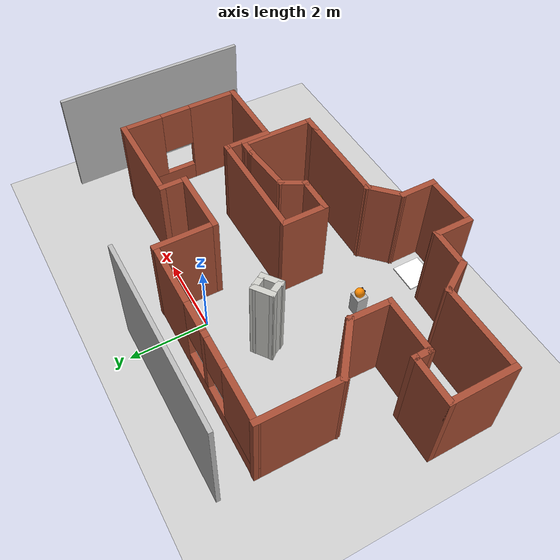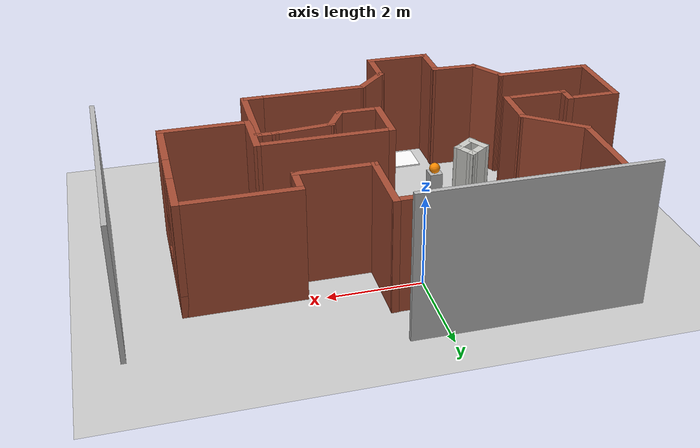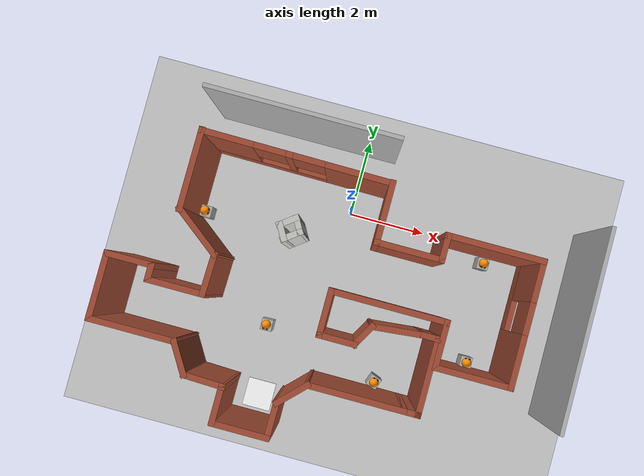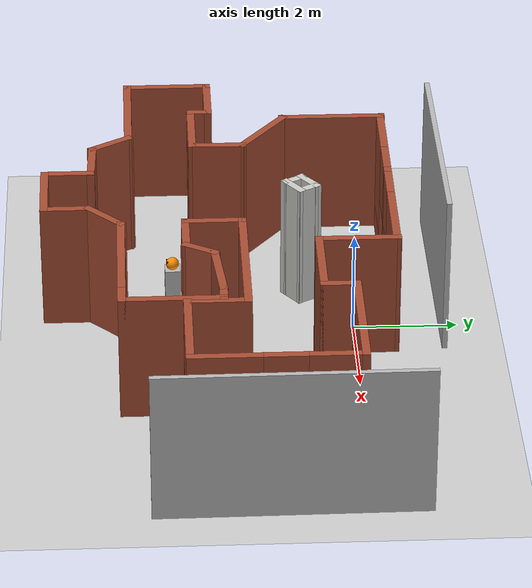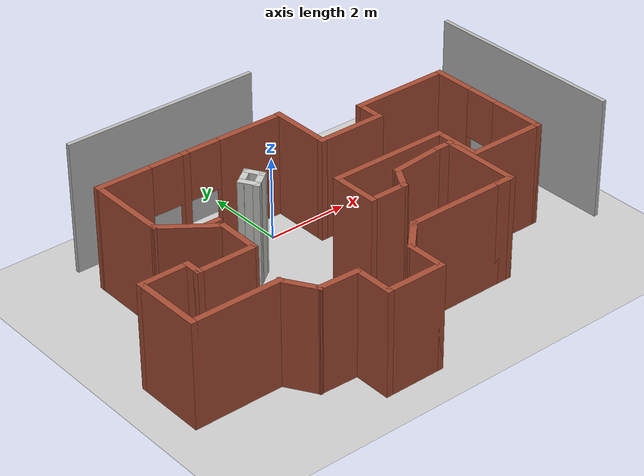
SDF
<sdf version="1.6">
 <world name="default">
  <model name="ground_plane">
   <static>1</static>
   <link name="link">
    <collision name="collision">
     <geometry><plane><normal>0 0 1</normal><size>100 100</size></plane></geometry>
     <surface><friction><ode><mu>100</mu><mu2>50</mu2></ode></friction></surface>
    </collision>
    <visual name="visual">
     <cast_shadows>0</cast_shadows>
     <geometry><plane><normal>0 0 1</normal><size>100 100</size></plane></geometry>
     <material>
      <script><uri>file://media/materials/scripts/gazebo.material</uri><name>Gazebo/Grey</name></script>
     </material>
    </visual>
   </link>
  </model>
  <gravity>0 0 -9.8</gravity>
  <magnetic_field>6e-06 2.3e-05 -4.2e-05</magnetic_field>
  <atmosphere type="adiabatic"/>
  <physics name="default_physics" default="0" type="ode">
   <max_step_size>0.001</max_step_size>
   <real_time_factor>1</real_time_factor>
   <real_time_update_rate>1000</real_time_update_rate>
  </physics>
  <scene><ambient>0.4 0.4 0.4 1</ambient><background>0.7 0.7 0.7 1</background><shadows>1</shadows></scene>
  <audio><device>default</device></audio>
  <spherical_coordinates>
   <surface_model>EARTH_WGS84</surface_model>
   <latitude_deg>0</latitude_deg>
   <longitude_deg>0</longitude_deg>
   <elevation>0</elevation>
   <heading_deg>0</heading_deg>
  </spherical_coordinates>
  <model name="Untitled">
   <pose>-0.264329 -2.5403 0 0 -0 0</pose>
   <link name="Wall_0">
    <collision name="Wall_0_Collision">
     <geometry><box><size>1.03977 0.15 2.5</size></box></geometry>
     <pose>0 0 1.25 0 -0 0</pose>
    </collision>
    <visual name="Wall_0_Visual">
     <pose>0 0 1.25 0 -0 0</pose>
     <geometry><box><size>1.03977 0.15 2.5</size></box></geometry>
     <material>
      <script><uri>file://media/materials/scripts/gazebo.material</uri><name>Gazebo/Bricks</name></script>
      <ambient>1 1 1 1</ambient>
     </material>
     <meta><layer>0</layer></meta>
    </visual>
    <pose>-1.56806 -2.87812 0 0 -0 -1.5708</pose>
   </link>
   <link name="Wall_1">
    <collision name="Wall_1_Collision">
     <geometry><box><size>1.5 0.15 2.5</size></box></geometry>
     <pose>0 0 1.25 0 -0 0</pose>
    </collision>
    <visual name="Wall_1_Visual">
     <pose>0 0 1.25 0 -0 0</pose>
     <geometry><box><size>1.5 0.15 2.5</size></box></geometry>
     <material>
      <script><uri>file://media/materials/scripts/gazebo.material</uri><name>Gazebo/Bricks</name></script>
      <ambient>1 1 1 1</ambient>
     </material>
     <meta><layer>0</layer></meta>
    </visual>
    <pose>-0.893059 -3.32295 0 0 -0 0</pose>
   </link>
   <link name="Wall_10">
    <collision name="Wall_10_Collision">
     <geometry><box><size>1.25 0.15 2.5</size></box></geometry>
     <pose>0 0 1.25 0 -0 0</pose>
    </collision>
    <visual name="Wall_10_Visual">
     <pose>0 0 1.25 0 -0 0</pose>
     <geometry><box><size>1.25 0.15 2.5</size></box></geometry>
     <material>
      <script><uri>file://media/materials/scripts/gazebo.material</uri><name>Gazebo/Bricks</name></script>
      <ambient>1 1 1 1</ambient>
     </material>
     <meta><layer>0</layer></meta>
    </visual>
    <pose>3.1875 -0.136022 0 0 -0 -1.5708</pose>
   </link>
   <link name="Wall_11">
    <collision name="Wall_11_Collision">
     <geometry><box><size>2 0.15 2.5</size></box></geometry>
     <pose>0 0 1.25 0 -0 0</pose>
    </collision>
    <visual name="Wall_11_Visual">
     <pose>0 0 1.25 0 -0 0</pose>
     <geometry><box><size>2 0.15 2.5</size></box></geometry>
     <material>
      <script><uri>file://media/materials/scripts/gazebo.material</uri><name>Gazebo/Bricks</name></script>
      <ambient>1 1 1 1</ambient>
     </material>
     <meta><layer>0</layer></meta>
    </visual>
    <pose>4.1125 -0.686022 0 0 -0 0</pose>
   </link>
   <link name="Wall_12">
    <pose>5.0375 0.863978 0 0 -0 1.5708</pose>
    <visual name="Wall_12_Visual_0">
     <pose>-0.94302 0 1.25 0 -0 0</pose>
     <geometry><box><size>1.36396 0.15 2.5</size></box></geometry>
     <material>
      <script><uri>file://media/materials/scripts/gazebo.material</uri><name>Gazebo/Bricks</name></script>
      <ambient>1 1 1 1</ambient>
     </material>
     <meta><layer>0</layer></meta>
    </visual>
    <collision name="Wall_12_Collision_0">
     <geometry><box><size>1.36396 0.15 2.5</size></box></geometry>
     <pose>-0.94302 0 1.25 0 -0 0</pose>
    </collision>
    <visual name="Wall_12_Visual_1">
     <pose>0.68198 0 0.25 0 -0 0</pose>
     <geometry><box><size>1.88604 0.15 0.5</size></box></geometry>
     <material>
      <script><uri>file://media/materials/scripts/gazebo.material</uri><name>Gazebo/Bricks</name></script>
      <ambient>1 1 1 1</ambient>
     </material>
     <meta><layer>0</layer></meta>
    </visual>
    <collision name="Wall_12_Collision_1">
     <geometry><box><size>1.88604 0.15 0.5</size></box></geometry>
     <pose>0.68198 0 0.25 0 -0 0</pose>
    </collision>
    <visual name="Wall_12_Visual_2">
     <pose>1.08198 0 1.5 0 -0 0</pose>
     <geometry><box><size>1.08604 0.15 2</size></box></geometry>
     <material>
      <script><uri>file://media/materials/scripts/gazebo.material</uri><name>Gazebo/Bricks</name></script>
      <ambient>1 1 1 1</ambient>
     </material>
     <meta><layer>0</layer></meta>
    </visual>
    <collision name="Wall_12_Collision_2">
     <geometry><box><size>1.08604 0.15 2</size></box></geometry>
     <pose>1.08198 0 1.5 0 -0 0</pose>
    </collision>
    <visual name="Wall_12_Visual_3">
     <pose>0.13896 0 1.9 0 -0 0</pose>
     <geometry><box><size>0.8 0.15 1.2</size></box></geometry>
     <material>
      <script><uri>file://media/materials/scripts/gazebo.material</uri><name>Gazebo/Bricks</name></script>
      <ambient>1 1 1 1</ambient>
     </material>
     <meta><layer>0</layer></meta>
    </visual>
    <collision name="Wall_12_Collision_3">
     <geometry><box><size>0.8 0.15 1.2</size></box></geometry>
     <pose>0.13896 0 1.9 0 -0 0</pose>
    </collision>
   </link>
   <link name="Wall_13">
    <collision name="Wall_13_Collision">
     <geometry><box><size>2.5 0.15 2.5</size></box></geometry>
     <pose>0 0 1.25 0 -0 0</pose>
    </collision>
    <visual name="Wall_13_Visual">
     <pose>0 0 1.25 0 -0 0</pose>
     <geometry><box><size>2.5 0.15 2.5</size></box></geometry>
     <material>
      <script><uri>file://media/materials/scripts/gazebo.material</uri><name>Gazebo/Bricks</name></script>
      <ambient>1 1 1 1</ambient>
     </material>
     <meta><layer>0</layer></meta>
    </visual>
    <pose>3.8625 2.41398 0 0 -0 3.14159</pose>
   </link>
   <link name="Wall_14">
    <collision name="Wall_14_Collision">
     <geometry><box><size>0.75 0.15 2.5</size></box></geometry>
     <pose>0 0 1.25 0 -0 0</pose>
    </collision>
    <visual name="Wall_14_Visual">
     <pose>0 0 1.25 0 -0 0</pose>
     <geometry><box><size>0.75 0.15 2.5</size></box></geometry>
     <material>
      <script><uri>file://media/materials/scripts/gazebo.material</uri><name>Gazebo/Bricks</name></script>
      <ambient>1 1 1 1</ambient>
     </material>
     <meta><layer>0</layer></meta>
    </visual>
    <pose>2.6875 2.11398 0 0 -0 -1.5708</pose>
   </link>
   <link name="Wall_16">
    <collision name="Wall_16_Collision">
     <geometry><box><size>1.75 0.15 2.5</size></box></geometry>
     <pose>0 0 1.25 0 -0 0</pose>
    </collision>
    <visual name="Wall_16_Visual">
     <pose>0 0 1.25 0 -0 0</pose>
     <geometry><box><size>1.75 0.15 2.5</size></box></geometry>
     <material>
      <script><uri>file://media/materials/scripts/gazebo.material</uri><name>Gazebo/Bricks</name></script>
      <ambient>1 1 1 1</ambient>
     </material>
     <meta><layer>0</layer></meta>
    </visual>
    <pose>1.8875 1.81398 0 0 -0 3.14159</pose>
   </link>
   <link name="Wall_17">
    <collision name="Wall_17_Collision">
     <geometry><box><size>1.61902 0.15 2.5</size></box></geometry>
     <pose>0 0 1.25 0 -0 0</pose>
    </collision>
    <visual name="Wall_17_Visual">
     <pose>0 0 1.25 0 -0 0</pose>
     <geometry><box><size>1.61902 0.15 2.5</size></box></geometry>
     <material>
      <script><uri>file://media/materials/scripts/gazebo.material</uri><name>Gazebo/Bricks</name></script>
      <ambient>1 1 1 1</ambient>
     </material>
     <meta><layer>0</layer></meta>
    </visual>
    <pose>1.0875 2.54849 0 0 -0 1.5708</pose>
   </link>
   <link name="Wall_18">
    <pose>-1.27926 3.28961 0 0 -0 3.13321</pose>
    <visual name="Wall_18_Visual_0">
     <pose>-1.56904 0 1.25 0 -0 0</pose>
     <geometry><box><size>1.74553 0.15 2.5</size></box></geometry>
     <material>
      <script><uri>file://media/materials/scripts/gazebo.material</uri><name>Gazebo/Bricks</name></script>
      <ambient>1 1 1 1</ambient>
     </material>
     <meta><layer>0</layer></meta>
    </visual>
    <collision name="Wall_18_Collision_0">
     <geometry><box><size>1.74553 0.15 2.5</size></box></geometry>
     <pose>-1.56904 0 1.25 0 -0 0</pose>
    </collision>
    <visual name="Wall_18_Visual_1">
     <pose>0.872763 0 0.25 0 -0 0</pose>
     <geometry><box><size>3.13807 0.15 0.5</size></box></geometry>
     <material>
      <script><uri>file://media/materials/scripts/gazebo.material</uri><name>Gazebo/Bricks</name></script>
      <ambient>1 1 1 1</ambient>
     </material>
     <meta><layer>0</layer></meta>
    </visual>
    <collision name="Wall_18_Collision_1">
     <geometry><box><size>3.13807 0.15 0.5</size></box></geometry>
     <pose>0.872763 0 0.25 0 -0 0</pose>
    </collision>
    <visual name="Wall_18_Visual_2">
     <pose>0.192591 0 1.5 0 -0 0</pose>
     <geometry><box><size>0.177729 0.15 2</size></box></geometry>
     <material>
      <script><uri>file://media/materials/scripts/gazebo.material</uri><name>Gazebo/Bricks</name></script>
      <ambient>1 1 1 1</ambient>
     </material>
     <meta><layer>0</layer></meta>
    </visual>
    <collision name="Wall_18_Collision_2">
     <geometry><box><size>0.177729 0.15 2</size></box></geometry>
     <pose>0.192591 0 1.5 0 -0 0</pose>
    </collision>
    <visual name="Wall_18_Visual_3">
     <pose>1.76163 0 1.5 0 -0 0</pose>
     <geometry><box><size>1.36034 0.15 2</size></box></geometry>
     <material>
      <script><uri>file://media/materials/scripts/gazebo.material</uri><name>Gazebo/Bricks</name></script>
      <ambient>1 1 1 1</ambient>
     </material>
     <meta><layer>0</layer></meta>
    </visual>
    <collision name="Wall_18_Collision_3">
     <geometry><box><size>1.36034 0.15 2</size></box></geometry>
     <pose>1.76163 0 1.5 0 -0 0</pose>
    </collision>
    <visual name="Wall_18_Visual_4">
     <pose>-0.296273 0 1.9 0 -0 0</pose>
     <geometry><box><size>0.8 0.15 1.2</size></box></geometry>
     <material>
      <script><uri>file://media/materials/scripts/gazebo.material</uri><name>Gazebo/Bricks</name></script>
      <ambient>1 1 1 1</ambient>
     </material>
     <meta><layer>0</layer></meta>
    </visual>
    <collision name="Wall_18_Collision_4">
     <geometry><box><size>0.8 0.15 1.2</size></box></geometry>
     <pose>-0.296273 0 1.9 0 -0 0</pose>
    </collision>
    <visual name="Wall_18_Visual_5">
     <pose>0.681456 0 1.9 0 -0 0</pose>
     <geometry><box><size>0.8 0.15 1.2</size></box></geometry>
     <material>
      <script><uri>file://media/materials/scripts/gazebo.material</uri><name>Gazebo/Bricks</name></script>
      <ambient>1 1 1 1</ambient>
     </material>
     <meta><layer>0</layer></meta>
    </visual>
    <collision name="Wall_18_Collision_5">
     <geometry><box><size>0.8 0.15 1.2</size></box></geometry>
     <pose>0.681456 0 1.9 0 -0 0</pose>
    </collision>
   </link>
   <link name="Wall_19">
    <collision name="Wall_19_Collision">
     <geometry><box><size>2.11268 0.15 2.5</size></box></geometry>
     <pose>0 0 1.25 0 -0 0</pose>
    </collision>
    <visual name="Wall_19_Visual">
     <pose>0 0 1.25 0 -0 0</pose>
     <geometry><box><size>2.11268 0.15 2.5</size></box></geometry>
     <material>
      <script><uri>file://media/materials/scripts/gazebo.material</uri><name>Gazebo/Bricks</name></script>
      <ambient>1 1 1 1</ambient>
     </material>
     <meta><layer>0</layer></meta>
    </visual>
    <pose>-3.65028 2.34135 0 0 -0 -1.57513</pose>
   </link>
   <link name="Wall_2">
    <collision name="Wall_2_Collision">
     <geometry><box><size>1 0.15 2.5</size></box></geometry>
     <pose>0 0 1.25 0 -0 0</pose>
    </collision>
    <visual name="Wall_2_Visual">
     <pose>0 0 1.25 0 -0 0</pose>
     <geometry><box><size>1 0.15 2.5</size></box></geometry>
     <material>
      <script><uri>file://media/materials/scripts/gazebo.material</uri><name>Gazebo/Bricks</name></script>
      <ambient>1 1 1 1</ambient>
     </material>
     <meta><layer>0</layer></meta>
    </visual>
    <pose>-0.218059 -2.89795 0 0 -0 1.5708</pose>
   </link>
   <link name="Wall_20">
    <collision name="Wall_20_Collision">
     <geometry><box><size>1.53341 0.15 2.5</size></box></geometry>
     <pose>0 0 1.25 0 -0 0</pose>
    </collision>
    <visual name="Wall_20_Visual">
     <pose>0 0 1.25 0 -0 0</pose>
     <geometry><box><size>1.53341 0.15 2.5</size></box></geometry>
     <material>
      <script><uri>file://media/materials/scripts/gazebo.material</uri><name>Gazebo/Bricks</name></script>
      <ambient>1 1 1 1</ambient>
     </material>
     <meta><layer>0</layer></meta>
    </visual>
    <pose>-3.10779 0.949528 0 0 -0 -0.659294</pose>
   </link>
   <link name="Wall_22">
    <collision name="Wall_22_Collision">
     <geometry><box><size>1.5 0.15 2.5</size></box></geometry>
     <pose>0 0 1.25 0 -0 0</pose>
    </collision>
    <visual name="Wall_22_Visual">
     <pose>0 0 1.25 0 -0 0</pose>
     <geometry><box><size>1.5 0.15 2.5</size></box></geometry>
     <material>
      <script><uri>file://media/materials/scripts/gazebo.material</uri><name>Gazebo/Bricks</name></script>
      <ambient>1 1 1 1</ambient>
     </material>
     <meta><layer>0</layer></meta>
    </visual>
    <pose>-3.2625 -0.455156 0 0 -0 3.14159</pose>
   </link>
   <link name="Wall_23">
    <collision name="Wall_23_Collision">
     <geometry><box><size>0.5 0.15 2.5</size></box></geometry>
     <pose>0 0 1.25 0 -0 0</pose>
    </collision>
    <visual name="Wall_23_Visual">
     <pose>0 0 1.25 0 -0 0</pose>
     <geometry><box><size>0.5 0.15 2.5</size></box></geometry>
     <material>
      <script><uri>file://media/materials/scripts/gazebo.material</uri><name>Gazebo/Bricks</name></script>
      <ambient>1 1 1 1</ambient>
     </material>
     <meta><layer>0</layer></meta>
    </visual>
    <pose>-3.9375 -0.280156 0 0 -0 1.5708</pose>
   </link>
   <link name="Wall_24">
    <collision name="Wall_24_Collision">
     <geometry><box><size>1.25 0.15 2.5</size></box></geometry>
     <pose>0 0 1.25 0 -0 0</pose>
    </collision>
    <visual name="Wall_24_Visual">
     <pose>0 0 1.25 0 -0 0</pose>
     <geometry><box><size>1.25 0.15 2.5</size></box></geometry>
     <material>
      <script><uri>file://media/materials/scripts/gazebo.material</uri><name>Gazebo/Bricks</name></script>
      <ambient>1 1 1 1</ambient>
     </material>
     <meta><layer>0</layer></meta>
    </visual>
    <pose>-4.4875 -0.105157 0 0 -0 3.14159</pose>
   </link>
   <link name="Wall_25">
    <collision name="Wall_25_Collision">
     <geometry><box><size>1.75 0.15 2.5</size></box></geometry>
     <pose>0 0 1.25 0 -0 0</pose>
    </collision>
    <visual name="Wall_25_Visual">
     <pose>0 0 1.25 0 -0 0</pose>
     <geometry><box><size>1.75 0.15 2.5</size></box></geometry>
     <material>
      <script><uri>file://media/materials/scripts/gazebo.material</uri><name>Gazebo/Bricks</name></script>
      <ambient>1 1 1 1</ambient>
     </material>
     <meta><layer>0</layer></meta>
    </visual>
    <pose>-5.0375 -0.905156 0 0 -0 -1.5708</pose>
   </link>
   <link name="Wall_26">
    <collision name="Wall_26_Collision">
     <geometry><box><size>2.25 0.15 2.5</size></box></geometry>
     <pose>0 0 1.25 0 -0 0</pose>
    </collision>
    <visual name="Wall_26_Visual">
     <pose>0 0 1.25 0 -0 0</pose>
     <geometry><box><size>2.25 0.15 2.5</size></box></geometry>
     <material>
      <script><uri>file://media/materials/scripts/gazebo.material</uri><name>Gazebo/Bricks</name></script>
      <ambient>1 1 1 1</ambient>
     </material>
     <meta><layer>0</layer></meta>
    </visual>
    <pose>-3.9875 -1.70516 0 0 -0 0</pose>
   </link>
   <link name="Wall_27">
    <collision name="Wall_27_Collision">
     <geometry><box><size>0.965882 0.15 2.5</size></box></geometry>
     <pose>0 0 1.25 0 -0 0</pose>
    </collision>
    <visual name="Wall_27_Visual">
     <pose>0 0 1.25 0 -0 0</pose>
     <geometry><box><size>0.965882 0.15 2.5</size></box></geometry>
     <material>
      <script><uri>file://media/materials/scripts/gazebo.material</uri><name>Gazebo/Bricks</name></script>
      <ambient>1 1 1 1</ambient>
     </material>
     <meta><layer>0</layer></meta>
    </visual>
    <pose>-2.725 -2.05338 0 0 -0 -1.02288</pose>
   </link>
   <link name="Wall_28">
    <collision name="Wall_28_Collision">
     <geometry><box><size>1.09497 0.15 2.5</size></box></geometry>
     <pose>0 0 1.25 0 -0 0</pose>
    </collision>
    <visual name="Wall_28_Visual">
     <pose>0 0 1.25 0 -0 0</pose>
     <geometry><box><size>1.09497 0.15 2.5</size></box></geometry>
     <material>
      <script><uri>file://media/materials/scripts/gazebo.material</uri><name>Gazebo/Bricks</name></script>
      <ambient>1 1 1 1</ambient>
     </material>
     <meta><layer>0</layer></meta>
    </visual>
    <pose>-2.02705 -2.41744 0 0 -0 -0.033525</pose>
   </link>
   <link name="Wall_3">
    <collision name="Wall_3_Collision">
     <geometry><box><size>1 0.15 2.5</size></box></geometry>
     <pose>0 0 1.25 0 -0 0</pose>
    </collision>
    <visual name="Wall_3_Visual">
     <pose>0 0 1.25 0 -0 0</pose>
     <geometry><box><size>1 0.15 2.5</size></box></geometry>
     <material>
      <script><uri>file://media/materials/scripts/gazebo.material</uri><name>Gazebo/Bricks</name></script>
      <ambient>1 1 1 1</ambient>
     </material>
     <meta><layer>0</layer></meta>
    </visual>
    <pose>0.082461 -2.17243 0 0 -0 0.785398</pose>
   </link>
   <link name="Wall_30">
    <collision name="Wall_30_Collision">
     <geometry><box><size>1.13133 0.15 2.5</size></box></geometry>
     <pose>0 0 1.25 0 -0 0</pose>
    </collision>
    <visual name="Wall_30_Visual">
     <pose>0 0 1.25 0 -0 0</pose>
     <geometry><box><size>1.13133 0.15 2.5</size></box></geometry>
     <material>
      <script><uri>file://media/materials/scripts/gazebo.material</uri><name>Gazebo/Bricks</name></script>
      <ambient>1 1 1 1</ambient>
     </material>
     <meta><layer>0</layer></meta>
    </visual>
    <pose>-2.57428 0.035331 0 0 -0 -1.59775</pose>
   </link>
   <link name="Wall_32">
    <collision name="Wall_32_Collision">
     <geometry><box><size>0.75 0.15 2.5</size></box></geometry>
     <pose>0 0 1.25 0 -0 0</pose>
    </collision>
    <visual name="Wall_32_Visual">
     <pose>0 0 1.25 0 -0 0</pose>
     <geometry><box><size>0.75 0.15 2.5</size></box></geometry>
     <material>
      <script><uri>file://media/materials/scripts/gazebo.material</uri><name>Gazebo/Bricks</name></script>
      <ambient>1 1 1 1</ambient>
     </material>
     <meta><layer>0</layer></meta>
    </visual>
    <pose>1.35072 -0.40104 0 0 -0 1.0472</pose>
   </link>
   <link name="Wall_33">
    <collision name="Wall_33_Collision">
     <geometry><box><size>1.38802 0.15 2.5</size></box></geometry>
     <pose>0 0 1.25 0 -0 0</pose>
    </collision>
    <visual name="Wall_33_Visual">
     <pose>0 0 1.25 0 -0 0</pose>
     <geometry><box><size>1.38802 0.15 2.5</size></box></geometry>
     <material>
      <script><uri>file://media/materials/scripts/gazebo.material</uri><name>Gazebo/Bricks</name></script>
      <ambient>1 1 1 1</ambient>
     </material>
     <meta><layer>0</layer></meta>
    </visual>
    <pose>2.11685 -0.081572 0 0 -0 0.09653</pose>
   </link>
   <link name="Wall_35">
    <collision name="Wall_35_Collision">
     <geometry><box><size>0.5 0.15 2.5</size></box></geometry>
     <pose>0 0 1.25 0 -0 0</pose>
    </collision>
    <visual name="Wall_35_Visual">
     <pose>0 0 1.25 0 -0 0</pose>
     <geometry><box><size>0.5 0.15 2.5</size></box></geometry>
     <material>
      <script><uri>file://media/materials/scripts/gazebo.material</uri><name>Gazebo/Bricks</name></script>
      <ambient>1 1 1 1</ambient>
     </material>
     <meta><layer>0</layer></meta>
    </visual>
    <pose>2.90798 -1.87191 0 0 -0 0</pose>
   </link>
   <link name="Wall_36">
    <collision name="Wall_36_Collision">
     <geometry><box><size>2 0.15 2.5</size></box></geometry>
     <pose>0 0 1.25 0 -0 0</pose>
    </collision>
    <visual name="Wall_36_Visual">
     <pose>0 0 1.25 0 -0 0</pose>
     <geometry><box><size>2 0.15 2.5</size></box></geometry>
     <material>
      <script><uri>file://media/materials/scripts/gazebo.material</uri><name>Gazebo/Bricks</name></script>
      <ambient>1 1 1 1</ambient>
     </material>
     <meta><layer>0</layer></meta>
    </visual>
    <pose>3.08298 -0.946912 0 0 -0 1.5708</pose>
   </link>
   <link name="Wall_37">
    <collision name="Wall_37_Collision">
     <geometry><box><size>0.5 0.15 2.5</size></box></geometry>
     <pose>0 0 1.25 0 -0 0</pose>
    </collision>
    <visual name="Wall_37_Visual">
     <pose>0 0 1.25 0 -0 0</pose>
     <geometry><box><size>0.5 0.15 2.5</size></box></geometry>
     <material>
      <script><uri>file://media/materials/scripts/gazebo.material</uri><name>Gazebo/Bricks</name></script>
      <ambient>1 1 1 1</ambient>
     </material>
     <meta><layer>0</layer></meta>
    </visual>
    <pose>2.90798 -0.021912 0 0 -0 3.14159</pose>
   </link>
   <link name="Wall_39">
    <collision name="Wall_39_Collision">
     <geometry><box><size>0.584347 0.15 2.5</size></box></geometry>
     <pose>0 0 1.25 0 -0 0</pose>
    </collision>
    <visual name="Wall_39_Visual">
     <pose>0 0 1.25 0 -0 0</pose>
     <geometry><box><size>0.584347 0.15 2.5</size></box></geometry>
     <material>
      <script><uri>file://media/materials/scripts/gazebo.material</uri><name>Gazebo/CeilingTiled</name></script>
      <ambient>1 1 1 1</ambient>
     </material>
     <meta><layer>0</layer></meta>
    </visual>
    <pose>-1.0908 1.74562 0 0 -0 -2.49891</pose>
   </link>
   <link name="Wall_4">
    <collision name="Wall_4_Collision">
     <geometry><box><size>2.5 0.15 2.5</size></box></geometry>
     <pose>0 0 1.25 0 -0 0</pose>
    </collision>
    <visual name="Wall_4_Visual">
     <pose>0 0 1.25 0 -0 0</pose>
     <geometry><box><size>2.5 0.15 2.5</size></box></geometry>
     <material>
      <script><uri>file://media/materials/scripts/gazebo.material</uri><name>Gazebo/Bricks</name></script>
      <ambient>1 1 1 1</ambient>
     </material>
     <meta><layer>0</layer></meta>
    </visual>
    <pose>1.55798 -1.87191 0 0 -0 0</pose>
   </link>
   <link name="Wall_40">
    <collision name="Wall_40_Collision">
     <geometry><box><size>0.5 0.15 2.5</size></box></geometry>
     <pose>0 0 1.25 0 -0 0</pose>
    </collision>
    <visual name="Wall_40_Visual">
     <pose>0 0 1.25 0 -0 0</pose>
     <geometry><box><size>0.5 0.15 2.5</size></box></geometry>
     <material>
      <script><uri>file://media/materials/scripts/gazebo.material</uri><name>Gazebo/CeilingTiled</name></script>
      <ambient>1 1 1 1</ambient>
     </material>
     <meta><layer>0</layer></meta>
    </visual>
    <pose>-1.16392 1.47713 0 0 -0 -1.0472</pose>
   </link>
   <link name="Wall_41">
    <collision name="Wall_41_Collision">
     <geometry><box><size>0.584347 0.15 2.5</size></box></geometry>
     <pose>0 0 1.25 0 -0 0</pose>
    </collision>
    <visual name="Wall_41_Visual">
     <pose>0 0 1.25 0 -0 0</pose>
     <geometry><box><size>0.584347 0.15 2.5</size></box></geometry>
     <material>
      <script><uri>file://media/materials/scripts/gazebo.material</uri><name>Gazebo/CeilingTiled</name></script>
      <ambient>1 1 1 1</ambient>
     </material>
     <meta><layer>0</layer></meta>
    </visual>
    <pose>-0.915799 1.44252 0 0 -0 0.642686</pose>
   </link>
   <link name="Wall_42">
    <collision name="Wall_42_Collision">
     <geometry><box><size>0.5 0.15 2.5</size></box></geometry>
     <pose>0 0 1.25 0 -0 0</pose>
    </collision>
    <visual name="Wall_42_Visual">
     <pose>0 0 1.25 0 -0 0</pose>
     <geometry><box><size>0.5 0.15 2.5</size></box></geometry>
     <material>
      <script><uri>file://media/materials/scripts/gazebo.material</uri><name>Gazebo/CeilingTiled</name></script>
      <ambient>1 1 1 1</ambient>
     </material>
     <meta><layer>0</layer></meta>
    </visual>
    <pose>-0.829454 1.72423 0 0 -0 2.0944</pose>
   </link>
   <link name="Wall_7">
    <collision name="Wall_7_Collision">
     <geometry><box><size>1 0.15 2.5</size></box></geometry>
     <pose>0 0 1.25 0 -0 0</pose>
    </collision>
    <visual name="Wall_7_Visual">
     <pose>0 0 1.25 0 -0 0</pose>
     <geometry><box><size>1 0.15 2.5</size></box></geometry>
     <material>
      <script><uri>file://media/materials/scripts/gazebo.material</uri><name>Gazebo/Bricks</name></script>
      <ambient>1 1 1 1</ambient>
     </material>
     <meta><layer>0</layer></meta>
    </visual>
    <pose>0.775725 -0.660847 0 0 -0 3.14159</pose>
   </link>
   <link name="Wall_8">
    <collision name="Wall_8_Collision">
     <geometry><box><size>1.22483 0.15 2.5</size></box></geometry>
     <pose>0 0 1.25 0 -0 0</pose>
    </collision>
    <visual name="Wall_8_Visual">
     <pose>0 0 1.25 0 -0 0</pose>
     <geometry><box><size>1.22483 0.15 2.5</size></box></geometry>
     <material>
      <script><uri>file://media/materials/scripts/gazebo.material</uri><name>Gazebo/Bricks</name></script>
      <ambient>1 1 1 1</ambient>
     </material>
     <meta><layer>0</layer></meta>
    </visual>
    <pose>0.3375 -0.123435 0 0 -0 1.5708</pose>
   </link>
   <link name="Wall_9">
    <collision name="Wall_9_Collision">
     <geometry><box><size>3 0.15 2.5</size></box></geometry>
     <pose>0 0 1.25 0 -0 0</pose>
    </collision>
    <visual name="Wall_9_Visual">
     <pose>0 0 1.25 0 -0 0</pose>
     <geometry><box><size>3 0.15 2.5</size></box></geometry>
     <material>
      <script><uri>file://media/materials/scripts/gazebo.material</uri><name>Gazebo/Bricks</name></script>
      <ambient>1 1 1 1</ambient>
     </material>
     <meta><layer>0</layer></meta>
    </visual>
    <pose>1.7625 0.413978 0 0 -0 0</pose>
   </link>
   <static>1</static>
  </model>
  <model name="Victim 1">
   <static>1</static>
   <link name="robot_link">
    <pose>0 0 0.3 0 -0 0</pose>
    <collision name="body_collision"><geometry><box><size>0.3 0.3 0.6</size></box></geometry></collision>
    <visual name="wheel1_visual">
     <pose>0.1 -0.05 0.45 0 1.57079 0</pose>
     <geometry><sphere><radius>0.025</radius></sphere></geometry>
     <material>
      <ambient>0.1 0.1 0.1 1</ambient>
      <diffuse>0.1 0.1 0.2 1</diffuse>
      <specular>0 0 0 0</specular>
      <emissive>0 0 0 1</emissive>
     </material>
    </visual>
    <visual name="wheel2_visual">
     <pose>0.1 0.05 0.45 0 1.57079 0</pose>
     <geometry><sphere><radius>0.025</radius></sphere></geometry>
     <material>
      <ambient>0.1 0.1 0.1 1</ambient>
      <diffuse>0.1 0.1 0.2 1</diffuse>
      <specular>0 0 0 0</specular>
      <emissive>0 0 0 1</emissive>
     </material>
    </visual>
    <visual name="body_visual_out"><geometry><box><size>0.3 0.3 0.6</size></box></geometry></visual>
    <visual name="body_visual1">
     <pose>0.03 0 0 0 -0 0</pose>
     <geometry><box><size>0.25 0.25 0.25</size></box></geometry>
     <material>
      <script>
       <uri>file://victim1/materials/scripts/</uri>
       <uri>file://victim1/materials/textures/</uri>
       <name>RepeatedTextureVic1</name>
      </script>
     </material>
    </visual>
    <visual name="head_visual">
     <pose>0 0 0.4 0 0 -2.5</pose>
     <geometry><sphere><radius>0.125</radius></sphere></geometry>
     <material>
      <ambient>1 0.55 0 1</ambient>
      <diffuse>1 0.55 0 1</diffuse>
      <specular>0 0 0 0</specular>
      <emissive>0 0 0 1</emissive>
     </material>
    </visual>
   </link>
   <pose>-1.36804 -3.43332 0 0 0 -1.55984</pose>
  </model>
  <model name="Victim 2">
   <static>1</static>
   <link name="robot_link">
    <pose>0 0 0.3 0 -0 0</pose>
    <collision name="body_collision"><geometry><box><size>0.3 0.3 0.6</size></box></geometry></collision>
    <visual name="wheel1_visual">
     <pose>0.1 -0.05 0.45 0 1.57079 0</pose>
     <geometry><sphere><radius>0.025</radius></sphere></geometry>
     <material>
      <ambient>0.1 0.1 0.1 1</ambient>
      <diffuse>0.1 0.1 0.2 1</diffuse>
      <specular>0 0 0 0</specular>
      <emissive>0 0 0 1</emissive>
     </material>
    </visual>
    <visual name="wheel2_visual">
     <pose>0.1 0.05 0.45 0 1.57079 0</pose>
     <geometry><sphere><radius>0.025</radius></sphere></geometry>
     <material>
      <ambient>0.1 0.1 0.1 1</ambient>
      <diffuse>0.1 0.1 0.2 1</diffuse>
      <specular>0 0 0 0</specular>
      <emissive>0 0 0 1</emissive>
     </material>
    </visual>
    <visual name="body_visual_out"><geometry><box><size>0.3 0.3 0.6</size></box></geometry></visual>
    <visual name="body_visual1">
     <pose>0.03 0 0 0 -0 0</pose>
     <geometry><box><size>0.25 0.25 0.25</size></box></geometry>
     <material>
      <script>
       <uri>file://victim2/materials/scripts/</uri>
       <uri>file://victim2/materials/textures/</uri>
       <name>RepeatedTextureVic2</name>
      </script>
     </material>
    </visual>
    <visual name="head_visual">
     <pose>0 0 0.4 0 0 -2.5</pose>
     <geometry><sphere><radius>0.125</radius></sphere></geometry>
     <material>
      <ambient>1 0.55 0 1</ambient>
      <diffuse>1 0.55 0 1</diffuse>
      <specular>0 0 0 0</specular>
      <emissive>0 0 0 1</emissive>
     </material>
    </visual>
   </link>
   <pose>1.73202 -4.14632 0 0 -0 1.20676</pose>
  </model>
  <model name="Victim 3">
   <static>1</static>
   <link name="robot_link">
    <pose>0 0 0.3 0 -0 0</pose>
    <collision name="body_collision"><geometry><box><size>0.3 0.3 0.6</size></box></geometry></collision>
    <visual name="wheel1_visual">
     <pose>0.1 -0.05 0.45 0 1.57079 0</pose>
     <geometry><sphere><radius>0.025</radius></sphere></geometry>
     <material>
      <ambient>0.1 0.1 0.1 1</ambient>
      <diffuse>0.1 0.1 0.2 1</diffuse>
      <specular>0 0 0 0</specular>
      <emissive>0 0 0 1</emissive>
     </material>
    </visual>
    <visual name="wheel2_visual">
     <pose>0.1 0.05 0.45 0 1.57079 0</pose>
     <geometry><sphere><radius>0.025</radius></sphere></geometry>
     <material>
      <ambient>0.1 0.1 0.1 1</ambient>
      <diffuse>0.1 0.1 0.2 1</diffuse>
      <specular>0 0 0 0</specular>
      <emissive>0 0 0 1</emissive>
     </material>
    </visual>
    <visual name="body_visual_out"><geometry><box><size>0.3 0.3 0.6</size></box></geometry></visual>
    <visual name="body_visual1">
     <pose>0.03 0 0 0 -0 0</pose>
     <geometry><box><size>0.25 0.25 0.25</size></box></geometry>
     <material>
      <script>
       <uri>file://victim3/materials/scripts/</uri>
       <uri>file://victim3/materials/textures/</uri>
       <name>RepeatedTextureVic3</name>
      </script>
     </material>
    </visual>
    <visual name="head_visual">
     <pose>0 0 0.4 0 0 -2.5</pose>
     <geometry><sphere><radius>0.125</radius></sphere></geometry>
     <material>
      <ambient>1 0.55 0 1</ambient>
      <diffuse>1 0.55 0 1</diffuse>
      <specular>0 0 0 0</specular>
      <emissive>0 0 0 1</emissive>
     </material>
    </visual>
   </link>
   <pose>3.92933 -3.02421 0 0 -0 1.58012</pose>
  </model>
  <model name="Victim 4">
   <static>1</static>
   <link name="robot_link">
    <pose>0 0 0.3 0 -0 0</pose>
    <collision name="body_collision"><geometry><box><size>0.3 0.3 0.6</size></box></geometry></collision>
    <visual name="wheel1_visual">
     <pose>0.1 -0.05 0.45 0 1.57079 0</pose>
     <geometry><sphere><radius>0.025</radius></sphere></geometry>
     <material>
      <ambient>0.1 0.1 0.1 1</ambient>
      <diffuse>0.1 0.1 0.2 1</diffuse>
      <specular>0 0 0 0</specular>
      <emissive>0 0 0 1</emissive>
     </material>
    </visual>
    <visual name="wheel2_visual">
     <pose>0.1 0.05 0.45 0 1.57079 0</pose>
     <geometry><sphere><radius>0.025</radius></sphere></geometry>
     <material>
      <ambient>0.1 0.1 0.1 1</ambient>
      <diffuse>0.1 0.1 0.2 1</diffuse>
      <specular>0 0 0 0</specular>
      <emissive>0 0 0 1</emissive>
     </material>
    </visual>
    <visual name="body_visual_out"><geometry><box><size>0.3 0.3 0.6</size></box></geometry></visual>
    <visual name="body_visual1">
     <pose>0.03 0 0 0 -0 0</pose>
     <geometry><box><size>0.25 0.25 0.25</size></box></geometry>
     <material>
      <script>
       <uri>file://victim4/materials/scripts/</uri>
       <uri>file://victim4/materials/textures/</uri>
       <name>RepeatedTextureVic4</name>
      </script>
     </material>
    </visual>
    <visual name="head_visual">
     <pose>0 0 0.4 0 0 -2.5</pose>
     <geometry><sphere><radius>0.125</radius></sphere></geometry>
     <material>
      <ambient>1 0.55 0 1</ambient>
      <diffuse>1 0.55 0 1</diffuse>
      <specular>0 0 0 0</specular>
      <emissive>0 0 0 1</emissive>
     </material>
    </visual>
   </link>
   <pose>3.70189 -0.40842 0 0 0 -1.57411</pose>
  </model>
  <model name="Victim 5">
   <static>1</static>
   <link name="robot_link">
    <pose>0 0 0.3 0 -0 0</pose>
    <collision name="body_collision"><geometry><box><size>0.3 0.3 0.6</size></box></geometry></collision>
    <visual name="wheel1_visual">
     <pose>0.1 -0.05 0.45 0 1.57079 0</pose>
     <geometry><sphere><radius>0.025</radius></sphere></geometry>
     <material>
      <ambient>0.1 0.1 0.1 1</ambient>
      <diffuse>0.1 0.1 0.2 1</diffuse>
      <specular>0 0 0 0</specular>
      <emissive>0 0 0 1</emissive>
     </material>
    </visual>
    <visual name="wheel2_visual">
     <pose>0.1 0.05 0.45 0 1.57079 0</pose>
     <geometry><sphere><radius>0.025</radius></sphere></geometry>
     <material>
      <ambient>0.1 0.1 0.1 1</ambient>
      <diffuse>0.1 0.1 0.2 1</diffuse>
      <specular>0 0 0 0</specular>
      <emissive>0 0 0 1</emissive>
     </material>
    </visual>
    <visual name="body_visual_out"><geometry><box><size>0.3 0.3 0.6</size></box></geometry></visual>
    <visual name="body_visual1">
     <pose>0.03 0 0 0 -0 0</pose>
     <geometry><box><size>0.25 0.25 0.25</size></box></geometry>
     <material>
      <script>
       <uri>file://victim5/materials/scripts/</uri>
       <uri>file://victim5/materials/textures/</uri>
       <name>RepeatedTextureVic5</name>
      </script>
     </material>
    </visual>
    <visual name="head_visual">
     <pose>0 0 0.4 0 0 -2.5</pose>
     <geometry><sphere><radius>0.125</radius></sphere></geometry>
     <material>
      <ambient>1 0.55 0 1</ambient>
      <diffuse>1 0.55 0 1</diffuse>
      <specular>0 0 0 0</specular>
      <emissive>0 0 0 1</emissive>
     </material>
    </visual>
   </link>
   <pose>-3.70444 -0.969375 0 0 -0 0</pose>
  </model>
  <model name="View 1">
   <static>1</static>
   <link name="view1_link">
    <visual name="view_visual1">
     <geometry><box><size>4.8 0.1 3.2</size></box></geometry>
     <material>
      <script>
       <uri>file://view1/materials/scripts/</uri>
       <uri>file://view1/materials/textures/</uri>
       <name>RepeatedTextureView1</name>
      </script>
     </material>
    </visual>
   </link>
   <pose>-1.60801 1.6931 1.55327 0 -0 0</pose>
  </model>
  <model name="View 1_0">
   <static>1</static>
   <link name="view1_link">
    <visual name="view_visual1">
     <geometry><box><size>5 0.1 3</size></box></geometry>
     <material>
      <script>
       <uri>file://view2/materials/scripts/</uri>
       <uri>file://view2/materials/textures/</uri>
       <name>RepeatedTextureView2</name>
      </script>
     </material>
    </visual>
   </link>
   <pose>6.04779 -1.46169 1.42227 0 0 -1.56359</pose>
  </model>
  <model name="Start Zone">
   <static>1</static>
   <link name="view1_link">
    <visual name="view_visual1">
     <geometry><box><size>0.75 0.75 0.04</size></box></geometry>
     <material>
      <ambient>1 1 1 1</ambient>
      <diffuse>1 1 1 1</diffuse>
      <specular>0 0 0 0</specular>
      <emissive>0 0 0 1</emissive>
     </material>
    </visual>
   </link>
   <pose>-1.12391 -5.32983 0 0 -0 0</pose>
  </model>
  <light name="user_directional_light_0" type="directional">
   <pose>0.157268 -1.41602 1 0 -0 0</pose>
   <diffuse>0.5 0.5 0.5 1</diffuse>
   <specular>0.1 0.1 0.1 1</specular>
   <direction>0.1 0.1 -0.9</direction>
   <attenuation>
    <range>20</range>
    <constant>0.5</constant>
    <linear>0.01</linear>
    <quadratic>0.001</quadratic>
   </attenuation>
  </light>
  <light name="user_directional_light_1" type="directional">
   <pose>5.48183 2.93843 1 0 -0 0</pose>
   <diffuse>0.5 0.5 0.5 1</diffuse>
   <specular>0.1 0.1 0.1 1</specular>
   <direction>0.1 0.1 -0.9</direction>
   <attenuation>
    <range>20</range>
    <constant>0.5</constant>
    <linear>0.01</linear>
    <quadratic>0.001</quadratic>
   </attenuation>
  </light>
 </world>
</sdf>
